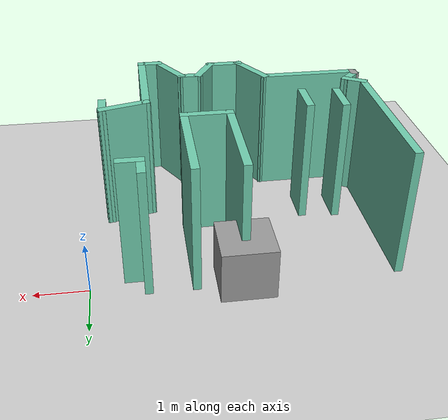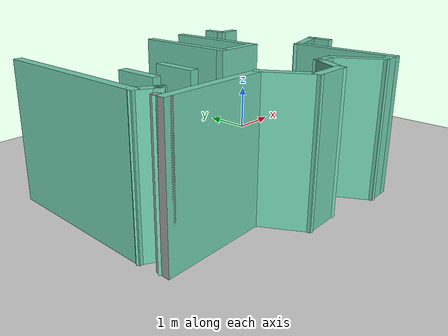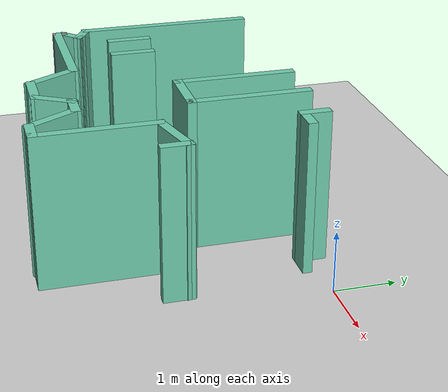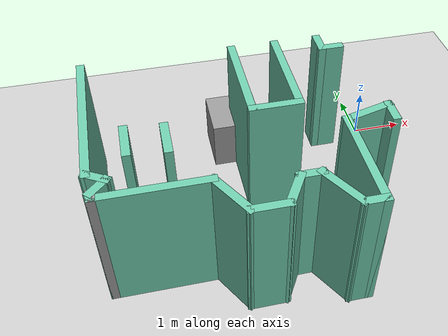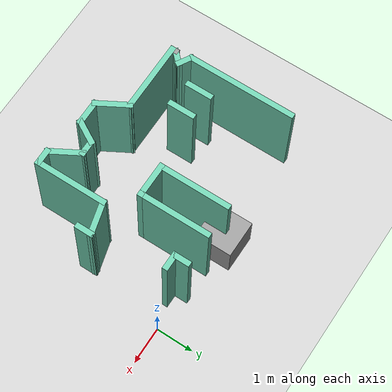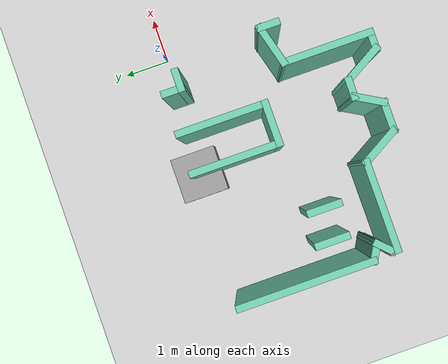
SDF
<sdf version="1.6">
 <world name="default">
  <model name="ground_plane">
   <static>1</static>
   <link name="link">
    <collision name="collision">
     <geometry><plane><normal>0 0 1</normal><size>100 100</size></plane></geometry>
     <surface><friction><ode><mu>100</mu><mu2>50</mu2></ode></friction></surface>
    </collision>
    <visual name="visual">
     <cast_shadows>0</cast_shadows>
     <geometry><plane><normal>0 0 1</normal><size>100 100</size></plane></geometry>
     <material>
      <script><uri>file://media/materials/scripts/gazebo.material</uri><name>Gazebo/Grey</name></script>
     </material>
    </visual>
   </link>
  </model>
  <model name="map_28">
   <link name="Wall_130">
    <pose>-4.73914 -3.07184 0 0 0 -1.5708</pose>
    <visual name="Wall_130_Visual">
     <pose>0 0 1.25 0 -0 0</pose>
     <geometry><box><size>0.75 0.15 2.5</size></box></geometry>
     <material>
      <script><uri>file://media/materials/scripts/gazebo.material</uri><name>Gazebo/Grey</name></script>
      <ambient>0.435294 0.796078 0.67451 1</ambient>
      <shader type="pixel"/>
     </material>
     <meta><layer>0</layer></meta>
    </visual>
    <collision name="Wall_130_Collision">
     <pose>0 0 1.25 0 -0 0</pose>
     <geometry><box><size>0.75 0.15 2.5</size></box></geometry>
     <surface>
      <friction>
       <ode><mu>1</mu><mu2>1</mu2><fdir1>0 0 0</fdir1><slip1>0</slip1><slip2>0</slip2></ode>
       <torsional>
        <coefficient>1</coefficient>
        <patch_radius>0</patch_radius>
        <surface_radius>0</surface_radius>
        <use_patch_radius>1</use_patch_radius>
        <ode><slip>0</slip></ode>
       </torsional>
      </friction>
      <bounce><restitution_coefficient>0</restitution_coefficient><threshold>1e+06</threshold></bounce>
      <contact>
       <collide_without_contact>0</collide_without_contact>
       <collide_without_contact_bitmask>1</collide_without_contact_bitmask>
       <collide_bitmask>1</collide_bitmask>
       <ode>
        <soft_cfm>0</soft_cfm>
        <soft_erp>0.2</soft_erp>
        <kp>1e+13</kp>
        <kd>1</kd>
        <max_vel>0.01</max_vel>
        <min_depth>0</min_depth>
       </ode>
       <bullet>
        <split_impulse>1</split_impulse>
        <split_impulse_penetration_threshold>-0.01</split_impulse_penetration_threshold>
        <soft_cfm>0</soft_cfm>
        <soft_erp>0.2</soft_erp>
        <kp>1e+13</kp>
        <kd>1</kd>
       </bullet>
      </contact>
     </surface>
    </collision>
   </link>
   <link name="Wall_132">
    <pose>-4.06835 -3.14124 0 0 0 -1.5708</pose>
    <visual name="Wall_132_Visual">
     <pose>0 0 1.25 0 -0 0</pose>
     <geometry><box><size>0.75 0.15 2.5</size></box></geometry>
     <material>
      <script><uri>file://media/materials/scripts/gazebo.material</uri><name>Gazebo/Grey</name></script>
      <ambient>0.435294 0.796078 0.67451 1</ambient>
      <shader type="pixel"/>
     </material>
     <meta><layer>0</layer></meta>
    </visual>
    <collision name="Wall_132_Collision">
     <pose>0 0 1.25 0 -0 0</pose>
     <geometry><box><size>0.75 0.15 2.5</size></box></geometry>
     <surface>
      <friction>
       <ode><mu>1</mu><mu2>1</mu2><fdir1>0 0 0</fdir1><slip1>0</slip1><slip2>0</slip2></ode>
       <torsional>
        <coefficient>1</coefficient>
        <patch_radius>0</patch_radius>
        <surface_radius>0</surface_radius>
        <use_patch_radius>1</use_patch_radius>
        <ode><slip>0</slip></ode>
       </torsional>
      </friction>
      <bounce><restitution_coefficient>0</restitution_coefficient><threshold>1e+06</threshold></bounce>
      <contact>
       <collide_without_contact>0</collide_without_contact>
       <collide_without_contact_bitmask>1</collide_without_contact_bitmask>
       <collide_bitmask>1</collide_bitmask>
       <ode>
        <soft_cfm>0</soft_cfm>
        <soft_erp>0.2</soft_erp>
        <kp>1e+13</kp>
        <kd>1</kd>
        <max_vel>0.01</max_vel>
        <min_depth>0</min_depth>
       </ode>
       <bullet>
        <split_impulse>1</split_impulse>
        <split_impulse_penetration_threshold>-0.01</split_impulse_penetration_threshold>
        <soft_cfm>0</soft_cfm>
        <soft_erp>0.2</soft_erp>
        <kp>1e+13</kp>
        <kd>1</kd>
       </bullet>
      </contact>
     </surface>
    </collision>
   </link>
   <link name="Wall_27">
    <pose>-0.660501 -1.21969 0 0 -0 3.14159</pose>
    <visual name="Wall_27_Visual">
     <pose>0 0 1.25 0 -0 0</pose>
     <geometry><box><size>0.5 0.15 2.5</size></box></geometry>
     <material>
      <script><uri>file://media/materials/scripts/gazebo.material</uri><name>Gazebo/Grey</name></script>
      <ambient>0.435294 0.796078 0.67451 1</ambient>
      <shader type="pixel"/>
     </material>
     <meta><layer>0</layer></meta>
    </visual>
    <collision name="Wall_27_Collision">
     <pose>0 0 1.25 0 -0 0</pose>
     <geometry><box><size>0.5 0.15 2.5</size></box></geometry>
     <surface>
      <friction>
       <ode><mu>1</mu><mu2>1</mu2><fdir1>0 0 0</fdir1><slip1>0</slip1><slip2>0</slip2></ode>
       <torsional>
        <coefficient>1</coefficient>
        <patch_radius>0</patch_radius>
        <surface_radius>0</surface_radius>
        <use_patch_radius>1</use_patch_radius>
        <ode><slip>0</slip></ode>
       </torsional>
      </friction>
      <bounce><restitution_coefficient>0</restitution_coefficient><threshold>1e+06</threshold></bounce>
      <contact>
       <collide_without_contact>0</collide_without_contact>
       <collide_without_contact_bitmask>1</collide_without_contact_bitmask>
       <collide_bitmask>1</collide_bitmask>
       <ode>
        <soft_cfm>0</soft_cfm>
        <soft_erp>0.2</soft_erp>
        <kp>1e+13</kp>
        <kd>1</kd>
        <max_vel>0.01</max_vel>
        <min_depth>0</min_depth>
       </ode>
       <bullet>
        <split_impulse>1</split_impulse>
        <split_impulse_penetration_threshold>-0.01</split_impulse_penetration_threshold>
        <soft_cfm>0</soft_cfm>
        <soft_erp>0.2</soft_erp>
        <kp>1e+13</kp>
        <kd>1</kd>
       </bullet>
      </contact>
     </surface>
    </collision>
   </link>
   <link name="Wall_34">
    <pose>-0.835501 -1.04469 0 0 -0 1.5708</pose>
    <visual name="Wall_34_Visual">
     <pose>0 0 1.25 0 -0 0</pose>
     <geometry><box><size>0.5 0.15 2.5</size></box></geometry>
     <material>
      <script><uri>file://media/materials/scripts/gazebo.material</uri><name>Gazebo/Grey</name></script>
      <ambient>0.435294 0.796078 0.67451 1</ambient>
      <shader type="pixel"/>
     </material>
     <meta><layer>0</layer></meta>
    </visual>
    <collision name="Wall_34_Collision">
     <pose>0 0 1.25 0 -0 0</pose>
     <geometry><box><size>0.5 0.15 2.5</size></box></geometry>
     <surface>
      <friction>
       <ode><mu>1</mu><mu2>1</mu2><fdir1>0 0 0</fdir1><slip1>0</slip1><slip2>0</slip2></ode>
       <torsional>
        <coefficient>1</coefficient>
        <patch_radius>0</patch_radius>
        <surface_radius>0</surface_radius>
        <use_patch_radius>1</use_patch_radius>
        <ode><slip>0</slip></ode>
       </torsional>
      </friction>
      <bounce><restitution_coefficient>0</restitution_coefficient><threshold>1e+06</threshold></bounce>
      <contact>
       <collide_without_contact>0</collide_without_contact>
       <collide_without_contact_bitmask>1</collide_without_contact_bitmask>
       <collide_bitmask>1</collide_bitmask>
       <ode>
        <soft_cfm>0</soft_cfm>
        <soft_erp>0.2</soft_erp>
        <kp>1e+13</kp>
        <kd>1</kd>
        <max_vel>0.01</max_vel>
        <min_depth>0</min_depth>
       </ode>
       <bullet>
        <split_impulse>1</split_impulse>
        <split_impulse_penetration_threshold>-0.01</split_impulse_penetration_threshold>
        <soft_cfm>0</soft_cfm>
        <soft_erp>0.2</soft_erp>
        <kp>1e+13</kp>
        <kd>1</kd>
       </bullet>
      </contact>
     </surface>
    </collision>
   </link>
   <link name="Wall_38">
    <pose>-1.6855 -1.79469 0 0 0 -1.5708</pose>
    <visual name="Wall_38_Visual">
     <pose>0 0 1.25 0 -0 0</pose>
     <geometry><box><size>2 0.15 2.5</size></box></geometry>
     <material>
      <script><uri>file://media/materials/scripts/gazebo.material</uri><name>Gazebo/Grey</name></script>
      <ambient>0.435294 0.796078 0.67451 1</ambient>
      <shader type="pixel"/>
     </material>
     <meta><layer>0</layer></meta>
    </visual>
    <collision name="Wall_38_Collision">
     <pose>0 0 1.25 0 -0 0</pose>
     <geometry><box><size>2 0.15 2.5</size></box></geometry>
     <surface>
      <friction>
       <ode><mu>1</mu><mu2>1</mu2><fdir1>0 0 0</fdir1><slip1>0</slip1><slip2>0</slip2></ode>
       <torsional>
        <coefficient>1</coefficient>
        <patch_radius>0</patch_radius>
        <surface_radius>0</surface_radius>
        <use_patch_radius>1</use_patch_radius>
        <ode><slip>0</slip></ode>
       </torsional>
      </friction>
      <bounce><restitution_coefficient>0</restitution_coefficient><threshold>1e+06</threshold></bounce>
      <contact>
       <collide_without_contact>0</collide_without_contact>
       <collide_without_contact_bitmask>1</collide_without_contact_bitmask>
       <collide_bitmask>1</collide_bitmask>
       <ode>
        <soft_cfm>0</soft_cfm>
        <soft_erp>0.2</soft_erp>
        <kp>1e+13</kp>
        <kd>1</kd>
        <max_vel>0.01</max_vel>
        <min_depth>0</min_depth>
       </ode>
       <bullet>
        <split_impulse>1</split_impulse>
        <split_impulse_penetration_threshold>-0.01</split_impulse_penetration_threshold>
        <soft_cfm>0</soft_cfm>
        <soft_erp>0.2</soft_erp>
        <kp>1e+13</kp>
        <kd>1</kd>
       </bullet>
      </contact>
     </surface>
    </collision>
   </link>
   <link name="Wall_39">
    <pose>-2.1105 -2.7197 0 0 -0 3.14159</pose>
    <visual name="Wall_39_Visual">
     <pose>0 0 1.25 0 -0 0</pose>
     <geometry><box><size>1 0.15 2.5</size></box></geometry>
     <material>
      <script><uri>file://media/materials/scripts/gazebo.material</uri><name>Gazebo/Grey</name></script>
      <ambient>0.435294 0.796078 0.67451 1</ambient>
      <shader type="pixel"/>
     </material>
     <meta><layer>0</layer></meta>
    </visual>
    <collision name="Wall_39_Collision">
     <pose>0 0 1.25 0 -0 0</pose>
     <geometry><box><size>1 0.15 2.5</size></box></geometry>
     <surface>
      <friction>
       <ode><mu>1</mu><mu2>1</mu2><fdir1>0 0 0</fdir1><slip1>0</slip1><slip2>0</slip2></ode>
       <torsional>
        <coefficient>1</coefficient>
        <patch_radius>0</patch_radius>
        <surface_radius>0</surface_radius>
        <use_patch_radius>1</use_patch_radius>
        <ode><slip>0</slip></ode>
       </torsional>
      </friction>
      <bounce><restitution_coefficient>0</restitution_coefficient><threshold>1e+06</threshold></bounce>
      <contact>
       <collide_without_contact>0</collide_without_contact>
       <collide_without_contact_bitmask>1</collide_without_contact_bitmask>
       <collide_bitmask>1</collide_bitmask>
       <ode>
        <soft_cfm>0</soft_cfm>
        <soft_erp>0.2</soft_erp>
        <kp>1e+13</kp>
        <kd>1</kd>
        <max_vel>0.01</max_vel>
        <min_depth>0</min_depth>
       </ode>
       <bullet>
        <split_impulse>1</split_impulse>
        <split_impulse_penetration_threshold>-0.01</split_impulse_penetration_threshold>
        <soft_cfm>0</soft_cfm>
        <soft_erp>0.2</soft_erp>
        <kp>1e+13</kp>
        <kd>1</kd>
       </bullet>
      </contact>
     </surface>
    </collision>
   </link>
   <link name="Wall_42">
    <pose>-2.5355 -1.79469 0 0 -0 1.5708</pose>
    <visual name="Wall_42_Visual">
     <pose>0 0 1.25 0 -0 0</pose>
     <geometry><box><size>2 0.15 2.5</size></box></geometry>
     <material>
      <script><uri>file://media/materials/scripts/gazebo.material</uri><name>Gazebo/Grey</name></script>
      <ambient>0.435294 0.796078 0.67451 1</ambient>
      <shader type="pixel"/>
     </material>
     <meta><layer>0</layer></meta>
    </visual>
    <collision name="Wall_42_Collision">
     <pose>0 0 1.25 0 -0 0</pose>
     <geometry><box><size>2 0.15 2.5</size></box></geometry>
     <surface>
      <friction>
       <ode><mu>1</mu><mu2>1</mu2><fdir1>0 0 0</fdir1><slip1>0</slip1><slip2>0</slip2></ode>
       <torsional>
        <coefficient>1</coefficient>
        <patch_radius>0</patch_radius>
        <surface_radius>0</surface_radius>
        <use_patch_radius>1</use_patch_radius>
        <ode><slip>0</slip></ode>
       </torsional>
      </friction>
      <bounce><restitution_coefficient>0</restitution_coefficient><threshold>1e+06</threshold></bounce>
      <contact>
       <collide_without_contact>0</collide_without_contact>
       <collide_without_contact_bitmask>1</collide_without_contact_bitmask>
       <collide_bitmask>1</collide_bitmask>
       <ode>
        <soft_cfm>0</soft_cfm>
        <soft_erp>0.2</soft_erp>
        <kp>1e+13</kp>
        <kd>1</kd>
        <max_vel>0.01</max_vel>
        <min_depth>0</min_depth>
       </ode>
       <bullet>
        <split_impulse>1</split_impulse>
        <split_impulse_penetration_threshold>-0.01</split_impulse_penetration_threshold>
        <soft_cfm>0</soft_cfm>
        <soft_erp>0.2</soft_erp>
        <kp>1e+13</kp>
        <kd>1</kd>
       </bullet>
      </contact>
     </surface>
    </collision>
   </link>
   <link name="Wall_44">
    <pose>-5.3855 -2.29469 0 0 0 -1.5708</pose>
    <visual name="Wall_44_Visual">
     <pose>0 0 1.25 0 -0 0</pose>
     <geometry><box><size>3 0.15 2.5</size></box></geometry>
     <material>
      <script><uri>file://media/materials/scripts/gazebo.material</uri><name>Gazebo/Grey</name></script>
      <ambient>0.435294 0.796078 0.67451 1</ambient>
      <shader type="pixel"/>
     </material>
     <meta><layer>0</layer></meta>
    </visual>
    <collision name="Wall_44_Collision">
     <pose>0 0 1.25 0 -0 0</pose>
     <geometry><box><size>3 0.15 2.5</size></box></geometry>
     <surface>
      <friction>
       <ode><mu>1</mu><mu2>1</mu2><fdir1>0 0 0</fdir1><slip1>0</slip1><slip2>0</slip2></ode>
       <torsional>
        <coefficient>1</coefficient>
        <patch_radius>0</patch_radius>
        <surface_radius>0</surface_radius>
        <use_patch_radius>1</use_patch_radius>
        <ode><slip>0</slip></ode>
       </torsional>
      </friction>
      <bounce><restitution_coefficient>0</restitution_coefficient><threshold>1e+06</threshold></bounce>
      <contact>
       <collide_without_contact>0</collide_without_contact>
       <collide_without_contact_bitmask>1</collide_without_contact_bitmask>
       <collide_bitmask>1</collide_bitmask>
       <ode>
        <soft_cfm>0</soft_cfm>
        <soft_erp>0.2</soft_erp>
        <kp>1e+13</kp>
        <kd>1</kd>
        <max_vel>0.01</max_vel>
        <min_depth>0</min_depth>
       </ode>
       <bullet>
        <split_impulse>1</split_impulse>
        <split_impulse_penetration_threshold>-0.01</split_impulse_penetration_threshold>
        <soft_cfm>0</soft_cfm>
        <soft_erp>0.2</soft_erp>
        <kp>1e+13</kp>
        <kd>1</kd>
       </bullet>
      </contact>
     </surface>
    </collision>
   </link>
   <link name="Wall_45">
    <pose>-5.23395 -3.80719 0 0 0 -0.523599</pose>
    <visual name="Wall_45_Visual">
     <pose>0 0 1.25 0 -0 0</pose>
     <geometry><box><size>0.5 0.15 2.5</size></box></geometry>
     <material>
      <script><uri>file://media/materials/scripts/gazebo.material</uri><name>Gazebo/Grey</name></script>
      <ambient>0.435294 0.796078 0.67451 1</ambient>
      <shader type="pixel"/>
     </material>
     <meta><layer>0</layer></meta>
    </visual>
    <collision name="Wall_45_Collision">
     <pose>0 0 1.25 0 -0 0</pose>
     <geometry><box><size>0.5 0.15 2.5</size></box></geometry>
     <surface>
      <friction>
       <ode><mu>1</mu><mu2>1</mu2><fdir1>0 0 0</fdir1><slip1>0</slip1><slip2>0</slip2></ode>
       <torsional>
        <coefficient>1</coefficient>
        <patch_radius>0</patch_radius>
        <surface_radius>0</surface_radius>
        <use_patch_radius>1</use_patch_radius>
        <ode><slip>0</slip></ode>
       </torsional>
      </friction>
      <bounce><restitution_coefficient>0</restitution_coefficient><threshold>1e+06</threshold></bounce>
      <contact>
       <collide_without_contact>0</collide_without_contact>
       <collide_without_contact_bitmask>1</collide_without_contact_bitmask>
       <collide_bitmask>1</collide_bitmask>
       <ode>
        <soft_cfm>0</soft_cfm>
        <soft_erp>0.2</soft_erp>
        <kp>1e+13</kp>
        <kd>1</kd>
        <max_vel>0.01</max_vel>
        <min_depth>0</min_depth>
       </ode>
       <bullet>
        <split_impulse>1</split_impulse>
        <split_impulse_penetration_threshold>-0.01</split_impulse_penetration_threshold>
        <soft_cfm>0</soft_cfm>
        <soft_erp>0.2</soft_erp>
        <kp>1e+13</kp>
        <kd>1</kd>
       </bullet>
      </contact>
     </surface>
    </collision>
   </link>
   <link name="Wall_46">
    <pose>-5.20614 -4.01844 0 0 0 -2.35619</pose>
    <visual name="Wall_46_Visual">
     <pose>0 0 1.25 0 -0 0</pose>
     <geometry><box><size>0.5 0.15 2.5</size></box></geometry>
     <material>
      <script><uri>file://media/materials/scripts/gazebo.material</uri><name>Gazebo/Grey</name></script>
      <ambient>0.435294 0.796078 0.67451 1</ambient>
      <shader type="pixel"/>
     </material>
     <meta><layer>0</layer></meta>
    </visual>
    <collision name="Wall_46_Collision">
     <pose>0 0 1.25 0 -0 0</pose>
     <geometry><box><size>0.5 0.15 2.5</size></box></geometry>
     <surface>
      <friction>
       <ode><mu>1</mu><mu2>1</mu2><fdir1>0 0 0</fdir1><slip1>0</slip1><slip2>0</slip2></ode>
       <torsional>
        <coefficient>1</coefficient>
        <patch_radius>0</patch_radius>
        <surface_radius>0</surface_radius>
        <use_patch_radius>1</use_patch_radius>
        <ode><slip>0</slip></ode>
       </torsional>
      </friction>
      <bounce><restitution_coefficient>0</restitution_coefficient><threshold>1e+06</threshold></bounce>
      <contact>
       <collide_without_contact>0</collide_without_contact>
       <collide_without_contact_bitmask>1</collide_without_contact_bitmask>
       <collide_bitmask>1</collide_bitmask>
       <ode>
        <soft_cfm>0</soft_cfm>
        <soft_erp>0.2</soft_erp>
        <kp>1e+13</kp>
        <kd>1</kd>
        <max_vel>0.01</max_vel>
        <min_depth>0</min_depth>
       </ode>
       <bullet>
        <split_impulse>1</split_impulse>
        <split_impulse_penetration_threshold>-0.01</split_impulse_penetration_threshold>
        <soft_cfm>0</soft_cfm>
        <soft_erp>0.2</soft_erp>
        <kp>1e+13</kp>
        <kd>1</kd>
       </bullet>
      </contact>
     </surface>
    </collision>
   </link>
   <link name="Wall_47">
    <pose>-5.32988 -4.19218 0 0 0 -1.5708</pose>
    <visual name="Wall_47_Visual">
     <pose>0 0 1.25 0 -0 0</pose>
     <geometry><box><size>0.25 0.15 2.5</size></box></geometry>
     <material>
      <script><uri>file://media/materials/scripts/gazebo.material</uri><name>Gazebo/Grey</name></script>
      <ambient>1 1 1 1</ambient>
      <shader type="pixel"/>
     </material>
     <meta><layer>0</layer></meta>
    </visual>
    <collision name="Wall_47_Collision">
     <pose>0 0 1.25 0 -0 0</pose>
     <geometry><box><size>0.25 0.15 2.5</size></box></geometry>
     <surface>
      <friction>
       <ode><mu>1</mu><mu2>1</mu2><fdir1>0 0 0</fdir1><slip1>0</slip1><slip2>0</slip2></ode>
       <torsional>
        <coefficient>1</coefficient>
        <patch_radius>0</patch_radius>
        <surface_radius>0</surface_radius>
        <use_patch_radius>1</use_patch_radius>
        <ode><slip>0</slip></ode>
       </torsional>
      </friction>
      <bounce><restitution_coefficient>0</restitution_coefficient><threshold>1e+06</threshold></bounce>
      <contact>
       <collide_without_contact>0</collide_without_contact>
       <collide_without_contact_bitmask>1</collide_without_contact_bitmask>
       <collide_bitmask>1</collide_bitmask>
       <ode>
        <soft_cfm>0</soft_cfm>
        <soft_erp>0.2</soft_erp>
        <kp>1e+13</kp>
        <kd>1</kd>
        <max_vel>0.01</max_vel>
        <min_depth>0</min_depth>
       </ode>
       <bullet>
        <split_impulse>1</split_impulse>
        <split_impulse_penetration_threshold>-0.01</split_impulse_penetration_threshold>
        <soft_cfm>0</soft_cfm>
        <soft_erp>0.2</soft_erp>
        <kp>1e+13</kp>
        <kd>1</kd>
       </bullet>
      </contact>
     </surface>
    </collision>
   </link>
   <link name="Wall_48">
    <pose>-4.40488 -4.24218 0 0 -0 0</pose>
    <visual name="Wall_48_Visual">
     <pose>0 0 1.25 0 -0 0</pose>
     <geometry><box><size>2 0.15 2.5</size></box></geometry>
     <material>
      <script><uri>file://media/materials/scripts/gazebo.material</uri><name>Gazebo/Grey</name></script>
      <ambient>0.435294 0.796078 0.67451 1</ambient>
      <shader type="pixel"/>
     </material>
     <meta><layer>0</layer></meta>
    </visual>
    <collision name="Wall_48_Collision">
     <pose>0 0 1.25 0 -0 0</pose>
     <geometry><box><size>2 0.15 2.5</size></box></geometry>
     <surface>
      <friction>
       <ode><mu>1</mu><mu2>1</mu2><fdir1>0 0 0</fdir1><slip1>0</slip1><slip2>0</slip2></ode>
       <torsional>
        <coefficient>1</coefficient>
        <patch_radius>0</patch_radius>
        <surface_radius>0</surface_radius>
        <use_patch_radius>1</use_patch_radius>
        <ode><slip>0</slip></ode>
       </torsional>
      </friction>
      <bounce><restitution_coefficient>0</restitution_coefficient><threshold>1e+06</threshold></bounce>
      <contact>
       <collide_without_contact>0</collide_without_contact>
       <collide_without_contact_bitmask>1</collide_without_contact_bitmask>
       <collide_bitmask>1</collide_bitmask>
       <ode>
        <soft_cfm>0</soft_cfm>
        <soft_erp>0.2</soft_erp>
        <kp>1e+13</kp>
        <kd>1</kd>
        <max_vel>0.01</max_vel>
        <min_depth>0</min_depth>
       </ode>
       <bullet>
        <split_impulse>1</split_impulse>
        <split_impulse_penetration_threshold>-0.01</split_impulse_penetration_threshold>
        <soft_cfm>0</soft_cfm>
        <soft_erp>0.2</soft_erp>
        <kp>1e+13</kp>
        <kd>1</kd>
       </bullet>
      </contact>
     </surface>
    </collision>
   </link>
   <link name="Wall_49">
    <pose>-3.26738 -4.61024 0 0 0 -1.0472</pose>
    <visual name="Wall_49_Visual">
     <pose>0 0 1.25 0 -0 0</pose>
     <geometry><box><size>1 0.15 2.5</size></box></geometry>
     <material>
      <script><uri>file://media/materials/scripts/gazebo.material</uri><name>Gazebo/Grey</name></script>
      <ambient>0.435294 0.796078 0.67451 1</ambient>
      <shader type="pixel"/>
     </material>
     <meta><layer>0</layer></meta>
    </visual>
    <collision name="Wall_49_Collision">
     <pose>0 0 1.25 0 -0 0</pose>
     <geometry><box><size>1 0.15 2.5</size></box></geometry>
     <surface>
      <friction>
       <ode><mu>1</mu><mu2>1</mu2><fdir1>0 0 0</fdir1><slip1>0</slip1><slip2>0</slip2></ode>
       <torsional>
        <coefficient>1</coefficient>
        <patch_radius>0</patch_radius>
        <surface_radius>0</surface_radius>
        <use_patch_radius>1</use_patch_radius>
        <ode><slip>0</slip></ode>
       </torsional>
      </friction>
      <bounce><restitution_coefficient>0</restitution_coefficient><threshold>1e+06</threshold></bounce>
      <contact>
       <collide_without_contact>0</collide_without_contact>
       <collide_without_contact_bitmask>1</collide_without_contact_bitmask>
       <collide_bitmask>1</collide_bitmask>
       <ode>
        <soft_cfm>0</soft_cfm>
        <soft_erp>0.2</soft_erp>
        <kp>1e+13</kp>
        <kd>1</kd>
        <max_vel>0.01</max_vel>
        <min_depth>0</min_depth>
       </ode>
       <bullet>
        <split_impulse>1</split_impulse>
        <split_impulse_penetration_threshold>-0.01</split_impulse_penetration_threshold>
        <soft_cfm>0</soft_cfm>
        <soft_erp>0.2</soft_erp>
        <kp>1e+13</kp>
        <kd>1</kd>
       </bullet>
      </contact>
     </surface>
    </collision>
   </link>
   <link name="Wall_50">
    <pose>-2.75488 -4.9783 0 0 -0 0</pose>
    <visual name="Wall_50_Visual">
     <pose>0 0 1.25 0 -0 0</pose>
     <geometry><box><size>0.75 0.15 2.5</size></box></geometry>
     <material>
      <script><uri>file://media/materials/scripts/gazebo.material</uri><name>Gazebo/Grey</name></script>
      <ambient>0.435294 0.796078 0.67451 1</ambient>
      <shader type="pixel"/>
     </material>
     <meta><layer>0</layer></meta>
    </visual>
    <collision name="Wall_50_Collision">
     <pose>0 0 1.25 0 -0 0</pose>
     <geometry><box><size>0.75 0.15 2.5</size></box></geometry>
     <surface>
      <friction>
       <ode><mu>1</mu><mu2>1</mu2><fdir1>0 0 0</fdir1><slip1>0</slip1><slip2>0</slip2></ode>
       <torsional>
        <coefficient>1</coefficient>
        <patch_radius>0</patch_radius>
        <surface_radius>0</surface_radius>
        <use_patch_radius>1</use_patch_radius>
        <ode><slip>0</slip></ode>
       </torsional>
      </friction>
      <bounce><restitution_coefficient>0</restitution_coefficient><threshold>1e+06</threshold></bounce>
      <contact>
       <collide_without_contact>0</collide_without_contact>
       <collide_without_contact_bitmask>1</collide_without_contact_bitmask>
       <collide_bitmask>1</collide_bitmask>
       <ode>
        <soft_cfm>0</soft_cfm>
        <soft_erp>0.2</soft_erp>
        <kp>1e+13</kp>
        <kd>1</kd>
        <max_vel>0.01</max_vel>
        <min_depth>0</min_depth>
       </ode>
       <bullet>
        <split_impulse>1</split_impulse>
        <split_impulse_penetration_threshold>-0.01</split_impulse_penetration_threshold>
        <soft_cfm>0</soft_cfm>
        <soft_erp>0.2</soft_erp>
        <kp>1e+13</kp>
        <kd>1</kd>
       </bullet>
      </contact>
     </surface>
    </collision>
   </link>
   <link name="Wall_51">
    <pose>-2.30488 -4.7185 0 0 -0 1.0472</pose>
    <visual name="Wall_51_Visual">
     <pose>0 0 1.25 0 -0 0</pose>
     <geometry><box><size>0.75 0.15 2.5</size></box></geometry>
     <material>
      <script><uri>file://media/materials/scripts/gazebo.material</uri><name>Gazebo/Grey</name></script>
      <ambient>0.435294 0.796078 0.67451 1</ambient>
      <shader type="pixel"/>
     </material>
     <meta><layer>0</layer></meta>
    </visual>
    <collision name="Wall_51_Collision">
     <pose>0 0 1.25 0 -0 0</pose>
     <geometry><box><size>0.75 0.15 2.5</size></box></geometry>
     <surface>
      <friction>
       <ode><mu>1</mu><mu2>1</mu2><fdir1>0 0 0</fdir1><slip1>0</slip1><slip2>0</slip2></ode>
       <torsional>
        <coefficient>1</coefficient>
        <patch_radius>0</patch_radius>
        <surface_radius>0</surface_radius>
        <use_patch_radius>1</use_patch_radius>
        <ode><slip>0</slip></ode>
       </torsional>
      </friction>
      <bounce><restitution_coefficient>0</restitution_coefficient><threshold>1e+06</threshold></bounce>
      <contact>
       <collide_without_contact>0</collide_without_contact>
       <collide_without_contact_bitmask>1</collide_without_contact_bitmask>
       <collide_bitmask>1</collide_bitmask>
       <ode>
        <soft_cfm>0</soft_cfm>
        <soft_erp>0.2</soft_erp>
        <kp>1e+13</kp>
        <kd>1</kd>
        <max_vel>0.01</max_vel>
        <min_depth>0</min_depth>
       </ode>
       <bullet>
        <split_impulse>1</split_impulse>
        <split_impulse_penetration_threshold>-0.01</split_impulse_penetration_threshold>
        <soft_cfm>0</soft_cfm>
        <soft_erp>0.2</soft_erp>
        <kp>1e+13</kp>
        <kd>1</kd>
       </bullet>
      </contact>
     </surface>
    </collision>
   </link>
   <link name="Wall_52">
    <pose>-1.97988 -4.45869 0 0 -0 0</pose>
    <visual name="Wall_52_Visual">
     <pose>0 0 1.25 0 -0 0</pose>
     <geometry><box><size>0.5 0.15 2.5</size></box></geometry>
     <material>
      <script><uri>file://media/materials/scripts/gazebo.material</uri><name>Gazebo/Grey</name></script>
      <ambient>0.435294 0.796078 0.67451 1</ambient>
      <shader type="pixel"/>
     </material>
     <meta><layer>0</layer></meta>
    </visual>
    <collision name="Wall_52_Collision">
     <pose>0 0 1.25 0 -0 0</pose>
     <geometry><box><size>0.5 0.15 2.5</size></box></geometry>
     <surface>
      <friction>
       <ode><mu>1</mu><mu2>1</mu2><fdir1>0 0 0</fdir1><slip1>0</slip1><slip2>0</slip2></ode>
       <torsional>
        <coefficient>1</coefficient>
        <patch_radius>0</patch_radius>
        <surface_radius>0</surface_radius>
        <use_patch_radius>1</use_patch_radius>
        <ode><slip>0</slip></ode>
       </torsional>
      </friction>
      <bounce><restitution_coefficient>0</restitution_coefficient><threshold>1e+06</threshold></bounce>
      <contact>
       <collide_without_contact>0</collide_without_contact>
       <collide_without_contact_bitmask>1</collide_without_contact_bitmask>
       <collide_bitmask>1</collide_bitmask>
       <ode>
        <soft_cfm>0</soft_cfm>
        <soft_erp>0.2</soft_erp>
        <kp>1e+13</kp>
        <kd>1</kd>
        <max_vel>0.01</max_vel>
        <min_depth>0</min_depth>
       </ode>
       <bullet>
        <split_impulse>1</split_impulse>
        <split_impulse_penetration_threshold>-0.01</split_impulse_penetration_threshold>
        <soft_cfm>0</soft_cfm>
        <soft_erp>0.2</soft_erp>
        <kp>1e+13</kp>
        <kd>1</kd>
       </bullet>
      </contact>
     </surface>
    </collision>
   </link>
   <link name="Wall_55">
    <pose>-1.59238 -4.82675 0 0 0 -1.0472</pose>
    <visual name="Wall_55_Visual">
     <pose>0 0 1.25 0 -0 0</pose>
     <geometry><box><size>1 0.15 2.5</size></box></geometry>
     <material>
      <script><uri>file://media/materials/scripts/gazebo.material</uri><name>Gazebo/Grey</name></script>
      <ambient>0.435294 0.796078 0.67451 1</ambient>
      <shader type="pixel"/>
     </material>
     <meta><layer>0</layer></meta>
    </visual>
    <collision name="Wall_55_Collision">
     <pose>0 0 1.25 0 -0 0</pose>
     <geometry><box><size>1 0.15 2.5</size></box></geometry>
     <surface>
      <friction>
       <ode><mu>1</mu><mu2>1</mu2><fdir1>0 0 0</fdir1><slip1>0</slip1><slip2>0</slip2></ode>
       <torsional>
        <coefficient>1</coefficient>
        <patch_radius>0</patch_radius>
        <surface_radius>0</surface_radius>
        <use_patch_radius>1</use_patch_radius>
        <ode><slip>0</slip></ode>
       </torsional>
      </friction>
      <bounce><restitution_coefficient>0</restitution_coefficient><threshold>1e+06</threshold></bounce>
      <contact>
       <collide_without_contact>0</collide_without_contact>
       <collide_without_contact_bitmask>1</collide_without_contact_bitmask>
       <collide_bitmask>1</collide_bitmask>
       <ode>
        <soft_cfm>0</soft_cfm>
        <soft_erp>0.2</soft_erp>
        <kp>1e+13</kp>
        <kd>1</kd>
        <max_vel>0.01</max_vel>
        <min_depth>0</min_depth>
       </ode>
       <bullet>
        <split_impulse>1</split_impulse>
        <split_impulse_penetration_threshold>-0.01</split_impulse_penetration_threshold>
        <soft_cfm>0</soft_cfm>
        <soft_erp>0.2</soft_erp>
        <kp>1e+13</kp>
        <kd>1</kd>
       </bullet>
      </contact>
     </surface>
    </collision>
   </link>
   <link name="Wall_56">
    <pose>-1.20488 -5.19481 0 0 -0 0</pose>
    <visual name="Wall_56_Visual">
     <pose>0 0 1.25 0 -0 0</pose>
     <geometry><box><size>0.5 0.15 2.5</size></box></geometry>
     <material>
      <script><uri>file://media/materials/scripts/gazebo.material</uri><name>Gazebo/Grey</name></script>
      <ambient>0.435294 0.796078 0.67451 1</ambient>
      <shader type="pixel"/>
     </material>
     <meta><layer>0</layer></meta>
    </visual>
    <collision name="Wall_56_Collision">
     <pose>0 0 1.25 0 -0 0</pose>
     <geometry><box><size>0.5 0.15 2.5</size></box></geometry>
     <surface>
      <friction>
       <ode><mu>1</mu><mu2>1</mu2><fdir1>0 0 0</fdir1><slip1>0</slip1><slip2>0</slip2></ode>
       <torsional>
        <coefficient>1</coefficient>
        <patch_radius>0</patch_radius>
        <surface_radius>0</surface_radius>
        <use_patch_radius>1</use_patch_radius>
        <ode><slip>0</slip></ode>
       </torsional>
      </friction>
      <bounce><restitution_coefficient>0</restitution_coefficient><threshold>1e+06</threshold></bounce>
      <contact>
       <collide_without_contact>0</collide_without_contact>
       <collide_without_contact_bitmask>1</collide_without_contact_bitmask>
       <collide_bitmask>1</collide_bitmask>
       <ode>
        <soft_cfm>0</soft_cfm>
        <soft_erp>0.2</soft_erp>
        <kp>1e+13</kp>
        <kd>1</kd>
        <max_vel>0.01</max_vel>
        <min_depth>0</min_depth>
       </ode>
       <bullet>
        <split_impulse>1</split_impulse>
        <split_impulse_penetration_threshold>-0.01</split_impulse_penetration_threshold>
        <soft_cfm>0</soft_cfm>
        <soft_erp>0.2</soft_erp>
        <kp>1e+13</kp>
        <kd>1</kd>
       </bullet>
      </contact>
     </surface>
    </collision>
   </link>
   <link name="Wall_57">
    <pose>-1.02988 -4.26981 0 0 -0 1.5708</pose>
    <visual name="Wall_57_Visual">
     <pose>0 0 1.25 0 -0 0</pose>
     <geometry><box><size>2 0.15 2.5</size></box></geometry>
     <material>
      <script><uri>file://media/materials/scripts/gazebo.material</uri><name>Gazebo/Grey</name></script>
      <ambient>0.435294 0.796078 0.67451 1</ambient>
      <shader type="pixel"/>
     </material>
     <meta><layer>0</layer></meta>
    </visual>
    <collision name="Wall_57_Collision">
     <pose>0 0 1.25 0 -0 0</pose>
     <geometry><box><size>2 0.15 2.5</size></box></geometry>
     <surface>
      <friction>
       <ode><mu>1</mu><mu2>1</mu2><fdir1>0 0 0</fdir1><slip1>0</slip1><slip2>0</slip2></ode>
       <torsional>
        <coefficient>1</coefficient>
        <patch_radius>0</patch_radius>
        <surface_radius>0</surface_radius>
        <use_patch_radius>1</use_patch_radius>
        <ode><slip>0</slip></ode>
       </torsional>
      </friction>
      <bounce><restitution_coefficient>0</restitution_coefficient><threshold>1e+06</threshold></bounce>
      <contact>
       <collide_without_contact>0</collide_without_contact>
       <collide_without_contact_bitmask>1</collide_without_contact_bitmask>
       <collide_bitmask>1</collide_bitmask>
       <ode>
        <soft_cfm>0</soft_cfm>
        <soft_erp>0.2</soft_erp>
        <kp>1e+13</kp>
        <kd>1</kd>
        <max_vel>0.01</max_vel>
        <min_depth>0</min_depth>
       </ode>
       <bullet>
        <split_impulse>1</split_impulse>
        <split_impulse_penetration_threshold>-0.01</split_impulse_penetration_threshold>
        <soft_cfm>0</soft_cfm>
        <soft_erp>0.2</soft_erp>
        <kp>1e+13</kp>
        <kd>1</kd>
       </bullet>
      </contact>
     </surface>
    </collision>
   </link>
   <link name="Wall_58">
    <pose>-0.619361 -3.23481 0 0 -0 0.261799</pose>
    <visual name="Wall_58_Visual">
     <pose>0 0 1.25 0 -0 0</pose>
     <geometry><box><size>1 0.15 2.5</size></box></geometry>
     <material>
      <script><uri>file://media/materials/scripts/gazebo.material</uri><name>Gazebo/Grey</name></script>
      <ambient>0.435294 0.796078 0.67451 1</ambient>
      <shader type="pixel"/>
     </material>
     <meta><layer>0</layer></meta>
    </visual>
    <collision name="Wall_58_Collision">
     <pose>0 0 1.25 0 -0 0</pose>
     <geometry><box><size>1 0.15 2.5</size></box></geometry>
     <surface>
      <friction>
       <ode><mu>1</mu><mu2>1</mu2><fdir1>0 0 0</fdir1><slip1>0</slip1><slip2>0</slip2></ode>
       <torsional>
        <coefficient>1</coefficient>
        <patch_radius>0</patch_radius>
        <surface_radius>0</surface_radius>
        <use_patch_radius>1</use_patch_radius>
        <ode><slip>0</slip></ode>
       </torsional>
      </friction>
      <bounce><restitution_coefficient>0</restitution_coefficient><threshold>1e+06</threshold></bounce>
      <contact>
       <collide_without_contact>0</collide_without_contact>
       <collide_without_contact_bitmask>1</collide_without_contact_bitmask>
       <collide_bitmask>1</collide_bitmask>
       <ode>
        <soft_cfm>0</soft_cfm>
        <soft_erp>0.2</soft_erp>
        <kp>1e+13</kp>
        <kd>1</kd>
        <max_vel>0.01</max_vel>
        <min_depth>0</min_depth>
       </ode>
       <bullet>
        <split_impulse>1</split_impulse>
        <split_impulse_penetration_threshold>-0.01</split_impulse_penetration_threshold>
        <soft_cfm>0</soft_cfm>
        <soft_erp>0.2</soft_erp>
        <kp>1e+13</kp>
        <kd>1</kd>
       </bullet>
      </contact>
     </surface>
    </collision>
   </link>
   <link name="Wall_59">
    <pose>-0.208842 -3.29981 0 0 0 -1.5708</pose>
    <visual name="Wall_59_Visual">
     <pose>0 0 1.25 0 -0 0</pose>
     <geometry><box><size>0.5 0.15 2.5</size></box></geometry>
     <material>
      <script><uri>file://media/materials/scripts/gazebo.material</uri><name>Gazebo/Grey</name></script>
      <ambient>0.435294 0.796078 0.67451 1</ambient>
      <shader type="pixel"/>
     </material>
     <meta><layer>0</layer></meta>
    </visual>
    <collision name="Wall_59_Collision">
     <pose>0 0 1.25 0 -0 0</pose>
     <geometry><box><size>0.5 0.15 2.5</size></box></geometry>
     <surface>
      <friction>
       <ode><mu>1</mu><mu2>1</mu2><fdir1>0 0 0</fdir1><slip1>0</slip1><slip2>0</slip2></ode>
       <torsional>
        <coefficient>1</coefficient>
        <patch_radius>0</patch_radius>
        <surface_radius>0</surface_radius>
        <use_patch_radius>1</use_patch_radius>
        <ode><slip>0</slip></ode>
       </torsional>
      </friction>
      <bounce><restitution_coefficient>0</restitution_coefficient><threshold>1e+06</threshold></bounce>
      <contact>
       <collide_without_contact>0</collide_without_contact>
       <collide_without_contact_bitmask>1</collide_without_contact_bitmask>
       <collide_bitmask>1</collide_bitmask>
       <ode>
        <soft_cfm>0</soft_cfm>
        <soft_erp>0.2</soft_erp>
        <kp>1e+13</kp>
        <kd>1</kd>
        <max_vel>0.01</max_vel>
        <min_depth>0</min_depth>
       </ode>
       <bullet>
        <split_impulse>1</split_impulse>
        <split_impulse_penetration_threshold>-0.01</split_impulse_penetration_threshold>
        <soft_cfm>0</soft_cfm>
        <soft_erp>0.2</soft_erp>
        <kp>1e+13</kp>
        <kd>1</kd>
       </bullet>
      </contact>
     </surface>
    </collision>
   </link>
   <link name="link_3">
    <inertial>
     <mass>1</mass>
     <inertia>
      <ixx>0.166667</ixx>
      <ixy>0</ixy>
      <ixz>0</ixz>
      <iyy>0.166667</iyy>
      <iyz>0</iyz>
      <izz>0.166667</izz>
     </inertia>
    </inertial>
    <pose>-2.55149 -0.908462 0.5 0 -0 0</pose>
    <visual name="visual">
     <geometry><box><size>1 1 1</size></box></geometry>
     <material>
      <lighting>1</lighting>
      <script><uri>file://media/materials/scripts/gazebo.material</uri><name>Gazebo/Grey</name></script>
      <shader type="pixel"/>
     </material>
    </visual>
    <collision name="collision">
     <geometry><box><size>1 1 1</size></box></geometry>
     <surface>
      <friction>
       <ode><mu>1</mu><mu2>1</mu2><fdir1>0 0 0</fdir1><slip1>0</slip1><slip2>0</slip2></ode>
       <torsional>
        <coefficient>1</coefficient>
        <patch_radius>0</patch_radius>
        <surface_radius>0</surface_radius>
        <use_patch_radius>1</use_patch_radius>
        <ode><slip>0</slip></ode>
       </torsional>
      </friction>
      <bounce><restitution_coefficient>0</restitution_coefficient><threshold>1e+06</threshold></bounce>
      <contact>
       <collide_without_contact>0</collide_without_contact>
       <collide_without_contact_bitmask>1</collide_without_contact_bitmask>
       <collide_bitmask>1</collide_bitmask>
       <ode>
        <soft_cfm>0</soft_cfm>
        <soft_erp>0.2</soft_erp>
        <kp>1e+13</kp>
        <kd>1</kd>
        <max_vel>0.01</max_vel>
        <min_depth>0</min_depth>
       </ode>
       <bullet>
        <split_impulse>1</split_impulse>
        <split_impulse_penetration_threshold>-0.01</split_impulse_penetration_threshold>
        <soft_cfm>0</soft_cfm>
        <soft_erp>0.2</soft_erp>
        <kp>1e+13</kp>
        <kd>1</kd>
       </bullet>
      </contact>
     </surface>
    </collision>
   </link>
   <static>1</static>
   <pose>-0.195887 1.02335 0 0 -0 0</pose>
  </model>
 </world>
</sdf>
